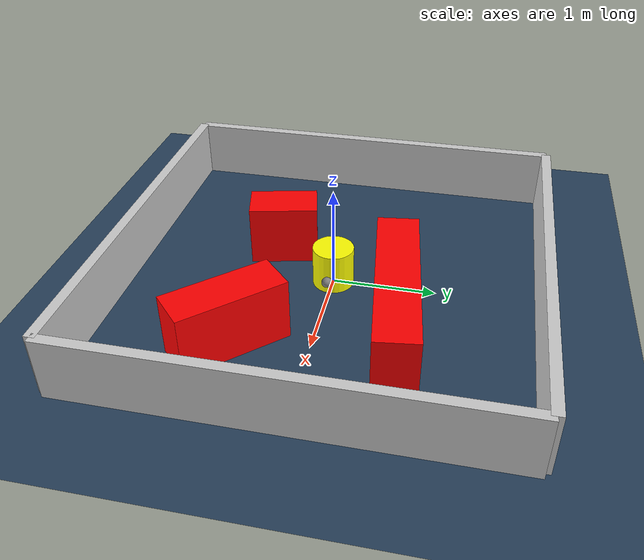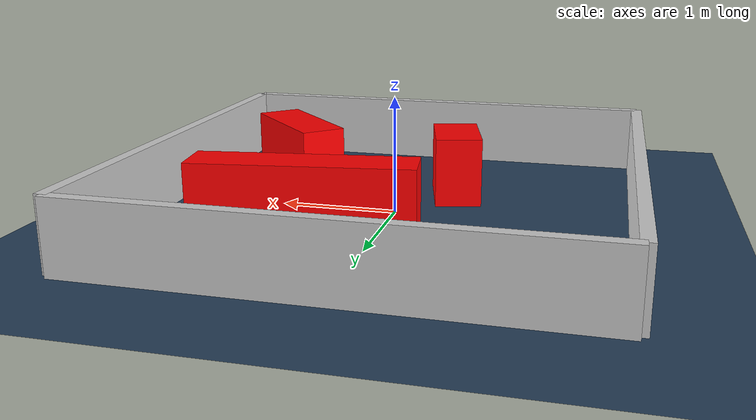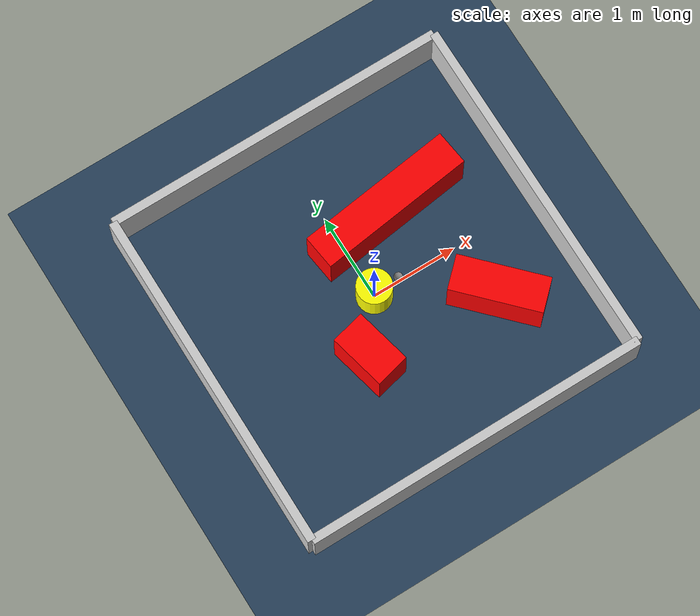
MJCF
<?xml version="1.0" ?>
<mujoco model="generated_environment">
  <option timestep="0.01" integrator="RK4" cone="elliptic"/>
  <default>
    <geom density="1"/>
  </default>
  <asset>
    <texture builtin="gradient" height="3072" rgb1="0.3 0.5 0.7" rgb2="0 0 0" type="skybox" width="512"/>
    <texture builtin="checker" height="300" mark="edge" markrgb="0.8 0.8 0.8" name="groundplane" rgb1="0.2 0.3 0.4" rgb2="0.1 0.2 0.3" type="2d" width="300"/>
    <material name="groundplane" reflectance="0.2" texrepeat="5 5" texture="groundplane" texuniform="true"/>
    <material name="robot" rgba="0.0 1.0 0.0 1"/>
  </asset>
  <worldbody>
    <light dir="0 0 -1" directional="true" pos="0 0 1.5"/>
    <geom condim="4" friction="1.0 0.005 0.001" material="groundplane" name="floor" size="0 0 0.05" type="plane"/>
    <body name="walls">
      <geom name="wall_1" condim="4" pos="-2.0 0.0 0.3" rgba="0.800000011920929 0.800000011920929 0.800000011920929 1.0" size="0.05 2.0 0.3" type="box"/>
      <geom name="wall_2" condim="4" pos="2.0 0.0 0.3" rgba="0.800000011920929 0.800000011920929 0.800000011920929 1.0" size="0.05 2.0 0.3" type="box"/>
      <geom name="wall_3" condim="4" pos="0.0 -2.0 0.3" rgba="0.800000011920929 0.800000011920929 0.800000011920929 1.0" size="2.0 0.05 0.3" type="box"/>
      <geom name="wall_4" condim="4" pos="0.0 2.0 0.3" rgba="0.800000011920929 0.800000011920929 0.800000011920929 1.0" size="2.0 0.05 0.3" type="box"/>
    </body>
    <body name="robot">
      <joint name="joint_x" type="slide" pos="0 0 0" axis="1 0 0"/>
      <joint name="joint_y" type="slide" pos="0 0 0" axis="0 1 0"/>
      <geom name="robot" type="sphere" pos="0.3 0.0 0.2" size="0.05" mass="5." friction="1.0 0.005 0.0001" condim="4" rgba="0.5 0.5 0.5 1.0"/>
      <site name="sensor_ball"/>
    </body>
    <body name="obstacle_movable_1">
      <geom name="obstacle_movable_1" condim="4" pos="0.0 0.0 0.2" euler="0 0 0.0" friction="1.0 0.005 0.001" rgba="1.0 1.0 0.0 1.0" size="0.2 0.2 0.0" type="cylinder" mass="0.1"/>
      <joint type="free"/>
    </body>
    <body name="obstacle_2_static">
      <geom name="obstacle_2_static" condim="4" pos="-0.42578001649764197 -0.5998202767085032 0.3" euler="0 0 103.30520381545402" friction="1.0 0.005 0.001" rgba="1 0 0 1" size="0.33424661456803223 0.2 0.3" type="box"/>
    </body>
    <body name="obstacle_3_static">
      <geom name="obstacle_3_static" condim="4" pos="0.5718214460056461 0.6924612145952962 0.3" euler="0 0 7.538419902869098" friction="1.0 0.005 0.001" rgba="1 0 0 1" size="0.9148757673879981 0.2 0.3" type="box"/>
    </body>
    <body name="obstacle_4_static">
      <geom name="obstacle_4_static" condim="4" pos="1.1018904790505042 -0.7179995040063205 0.3" euler="0 0 313.73414299835457" friction="1.0 0.005 0.001" rgba="1 0 0 1" size="0.5185197669416369 0.2 0.3" type="box"/>
    </body>
  </worldbody>
  <actuator>
    <motor name="actuator_x" joint="joint_x" gear="1" ctrlrange="-1 1"/>
    <motor name="actuator_y" joint="joint_y" gear="1" ctrlrange="-1 1"/>
  </actuator>
</mujoco>
